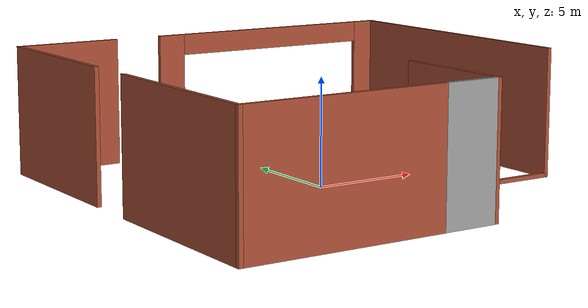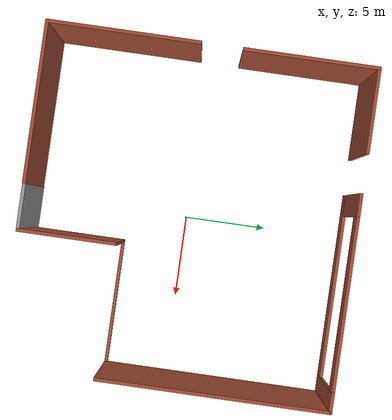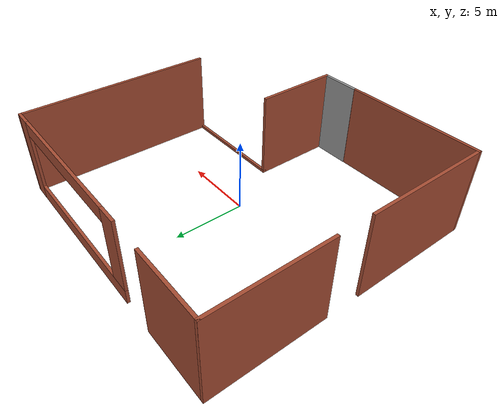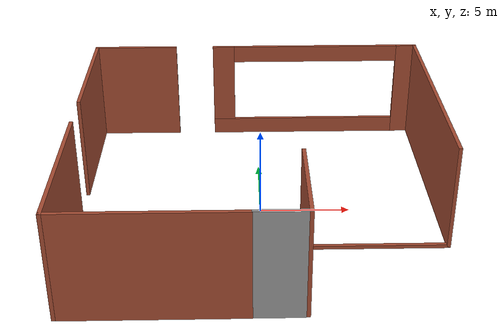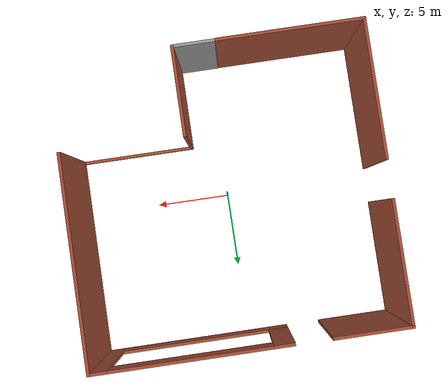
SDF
<?xml version='1.0'?>
<sdf version='1.7'>
  <model name='warehouse'>
    <pose>-0.0525 0.21944 0 0 -0 0</pose>
    <link name='Door_1'>
      <collision name='Door_1_Collision'>
        <geometry>
          <box>
            <size>2.59 0.2 6</size>
          </box>
        </geometry>
        <pose>0 0 3 0 -0 0</pose>
      </collision>
      <visual name='Door_1_Visual'>
        <pose>0 0 3 0 -0 0</pose>
        <geometry>
          <box>
            <size>2.59 0.2 6</size>
          </box>
        </geometry>
        <material>
          <script>
            <uri>file://media/materials/scripts/gazebo.material</uri>
            <name>Gazebo/Grey</name>
          </script>
        </material>
      </visual>
      <pose>0.734779 -9.60726 0 0 -0 0</pose>
    </link>
    <link name='Wall_0'>
      <collision name='Wall_0_Collision'>
        <geometry>
          <box>
            <size>9.05024 0.2 6</size>
          </box>
        </geometry>
        <pose>0 0 3 0 -0 0</pose>
      </collision>
      <visual name='Wall_0_Visual'>
        <pose>0 0 3 0 -0 0</pose>
        <geometry>
          <box>
            <size>9.05024 0.2 6</size>
          </box>
        </geometry>
        <material>
          <script>
            <uri>file://media/materials/scripts/gazebo.material</uri>
            <name>Gazebo/Bricks</name>
          </script>
          <ambient>1 1 1 1</ambient>
        </material>
        <meta>
          <layer>0</layer>
        </meta>
      </visual>
      <pose>-9.9795 -5.20044 0 0 -0 1.5708</pose>
    </link>
    <link name='Wall_14'>
      <collision name='Wall_14_Collision'>
        <geometry>
          <box>
            <size>8 0.2 6</size>
          </box>
        </geometry>
        <pose>0 0 3 0 -0 0</pose>
      </collision>
      <visual name='Wall_14_Visual'>
        <pose>0 0 3 0 -0 0</pose>
        <geometry>
          <box>
            <size>8 0.2 6</size>
          </box>
        </geometry>
        <material>
          <script>
            <uri>file://media/materials/scripts/gazebo.material</uri>
            <name>Gazebo/Bricks</name>
          </script>
          <ambient>0.760784 0.662745 0.627451 1</ambient>
        </material>
        <meta>
          <layer>0</layer>
        </meta>
      </visual>
      <pose>-9.9605 5.72556 0 0 -0 1.5708</pose>
    </link>
    <link name='Wall_16'>
      <collision name='Wall_16_Collision'>
        <geometry>
          <box>
            <size>5.04976 0.2 6</size>
          </box>
        </geometry>
        <pose>0 0 3 0 -0 0</pose>
      </collision>
      <visual name='Wall_16_Visual'>
        <pose>0 0 3 0 -0 0</pose>
        <geometry>
          <box>
            <size>5.04976 0.2 6</size>
          </box>
        </geometry>
        <material>
          <script>
            <uri>file://media/materials/scripts/gazebo.material</uri>
            <name>Gazebo/Bricks</name>
          </script>
          <ambient>1 1 1 1</ambient>
        </material>
        <meta>
          <layer>0</layer>
        </meta>
      </visual>
      <pose>-7.5355 9.62556 0 0 -0 0</pose>
    </link>
    <link name='Wall_19'>
      <collision name='Wall_19_Collision'>
        <geometry>
          <box>
            <size>9.55 0.2 6</size>
          </box>
        </geometry>
        <pose>0 0 3 0 -0 0</pose>
      </collision>
      <visual name='Wall_19_Visual'>
        <pose>0 0 3 0 -0 0</pose>
        <geometry>
          <box>
            <size>9.55 0.2 6</size>
          </box>
        </geometry>
        <material>
          <script>
            <uri>file://media/materials/scripts/gazebo.material</uri>
            <name>Gazebo/Bricks</name>
          </script>
          <ambient>1 1 1 1</ambient>
        </material>
        <meta>
          <layer>0</layer>
        </meta>
      </visual>
      <pose>-5.3045 -9.62544 0 0 -0 0</pose>
    </link>
    <link name='Wall_21'>
      <collision name='Wall_21_Collision'>
        <geometry>
          <box>
            <size>8.05 0.2 0.2</size>
          </box>
        </geometry>
        <pose>0 0 0.1 0 -0 0</pose>
      </collision>
      <visual name='Wall_21_Visual'>
        <pose>0 0 0.1 0 -0 0</pose>
        <geometry>
          <box>
            <size>8.05 0.2 0.2</size>
          </box>
        </geometry>
        <material>
          <script>
            <uri>file://media/materials/scripts/gazebo.material</uri>
            <name>Gazebo/Bricks</name>
          </script>
          <ambient>1 1 1 1</ambient>
        </material>
        <meta>
          <layer>0</layer>
        </meta>
      </visual>
      <pose>6.0545 -3.98944 0 0 -0 0</pose>
    </link>
    <link name='Wall_23'>
      <collision name='Wall_23_Collision'>
        <geometry>
          <box>
            <size>5.79974 0.2 6</size>
          </box>
        </geometry>
        <pose>0 0 3 0 -0 0</pose>
      </collision>
      <visual name='Wall_23_Visual'>
        <pose>0 0 3 0 -0 0</pose>
        <geometry>
          <box>
            <size>5.79974 0.2 6</size>
          </box>
        </geometry>
        <material>
          <script>
            <uri>file://media/materials/scripts/gazebo.material</uri>
            <name>Gazebo/Bricks</name>
          </script>
          <ambient>0.760784 0.662745 0.627451 1</ambient>
        </material>
        <meta>
          <layer>0</layer>
        </meta>
      </visual>
      <pose>2.1295 -6.78944 0 0 -0 -1.5708</pose>
    </link>
    <link name='Wall_25'>
      <collision name='Wall_25_Collision'>
        <geometry>
          <box>
            <size>13.8 0.2 6</size>
          </box>
        </geometry>
        <pose>0 0 3 0 -0 0</pose>
      </collision>
      <visual name='Wall_25_Visual'>
        <pose>0 0 3 0 -0 0</pose>
        <geometry>
          <box>
            <size>13.8 0.2 6</size>
          </box>
        </geometry>
        <material>
          <script>
            <uri>file://media/materials/scripts/gazebo.material</uri>
            <name>Gazebo/Bricks</name>
          </script>
          <ambient>1 1 1 1</ambient>
        </material>
        <meta>
          <layer>0</layer>
        </meta>
      </visual>
      <pose>9.9795 2.81056 0 0 -0 1.5708</pose>
    </link>
    <link name='Wall_26'>
      <pose>3.6795 9.61056 0 0 -0 3.14159</pose>
      <visual name='Wall_26_Visual_0'>
        <pose>-5.77511 0 3 0 -0 0</pose>
        <geometry>
          <box>
            <size>1.24978 0.2 6</size>
          </box>
        </geometry>
        <material>
          <script>
            <uri>file://media/materials/scripts/gazebo.material</uri>
            <name>Gazebo/Bricks</name>
          </script>
          <ambient>1 1 1 1</ambient>
        </material>
        <meta>
          <layer>0</layer>
        </meta>
      </visual>
      <collision name='Wall_26_Collision_0'>
        <geometry>
          <box>
            <size>1.24978 0.2 6</size>
          </box>
        </geometry>
        <pose>-5.77511 0 3 0 -0 0</pose>
      </collision>
      <visual name='Wall_26_Visual_1'>
        <pose>0.624892 0 0.5 0 -0 0</pose>
        <geometry>
          <box>
            <size>11.5502 0.2 1</size>
          </box>
        </geometry>
        <material>
          <script>
            <uri>file://media/materials/scripts/gazebo.material</uri>
            <name>Gazebo/Bricks</name>
          </script>
          <ambient>1 1 1 1</ambient>
        </material>
        <meta>
          <layer>0</layer>
        </meta>
      </visual>
      <collision name='Wall_26_Collision_1'>
        <geometry>
          <box>
            <size>11.5502 0.2 1</size>
          </box>
        </geometry>
        <pose>0.624892 0 0.5 0 -0 0</pose>
      </collision>
      <visual name='Wall_26_Visual_2'>
        <pose>5.72989 0 3.5 0 -0 0</pose>
        <geometry>
          <box>
            <size>1.34022 0.2 5</size>
          </box>
        </geometry>
        <material>
          <script>
            <uri>file://media/materials/scripts/gazebo.material</uri>
            <name>Gazebo/Bricks</name>
          </script>
          <ambient>1 1 1 1</ambient>
        </material>
        <meta>
          <layer>0</layer>
        </meta>
      </visual>
      <collision name='Wall_26_Collision_2'>
        <geometry>
          <box>
            <size>1.34022 0.2 5</size>
          </box>
        </geometry>
        <pose>5.72989 0 3.5 0 -0 0</pose>
      </collision>
      <visual name='Wall_26_Visual_3'>
        <pose>-0.045216 0 5.5 0 -0 0</pose>
        <geometry>
          <box>
            <size>10.21 0.2 1</size>
          </box>
        </geometry>
        <material>
          <script>
            <uri>file://media/materials/scripts/gazebo.material</uri>
            <name>Gazebo/Bricks</name>
          </script>
          <ambient>1 1 1 1</ambient>
        </material>
        <meta>
          <layer>0</layer>
        </meta>
      </visual>
      <collision name='Wall_26_Collision_3'>
        <geometry>
          <box>
            <size>10.21 0.2 1</size>
          </box>
        </geometry>
        <pose>-0.045216 0 5.5 0 -0 0</pose>
      </collision>
    </link>
    <static>1</static>
  </model>
</sdf>
